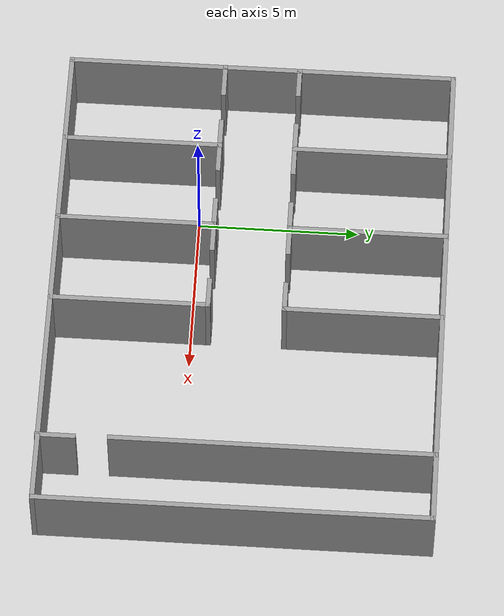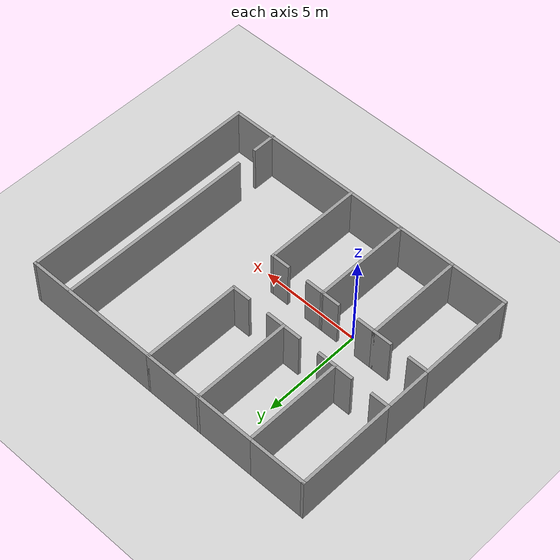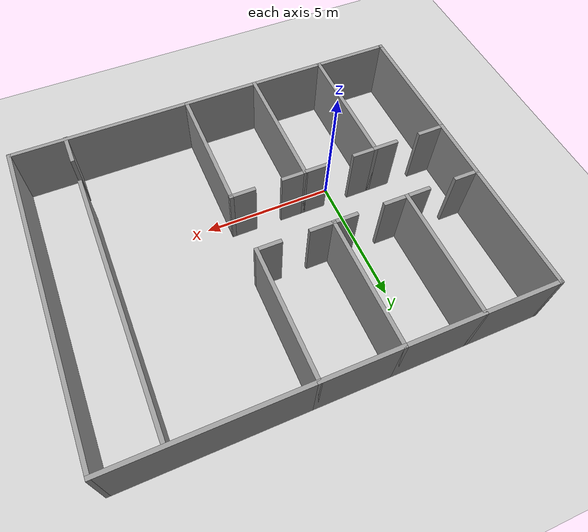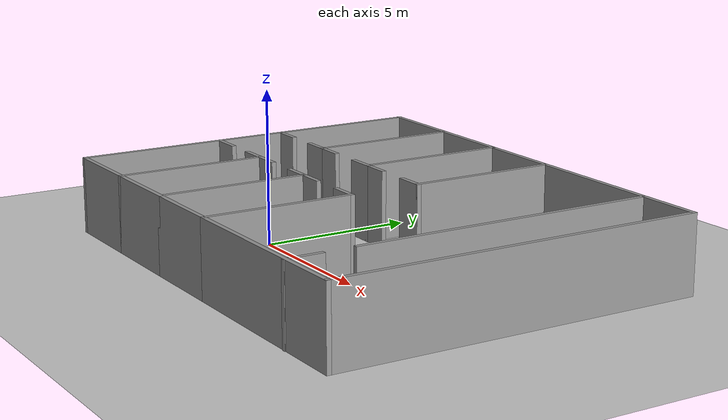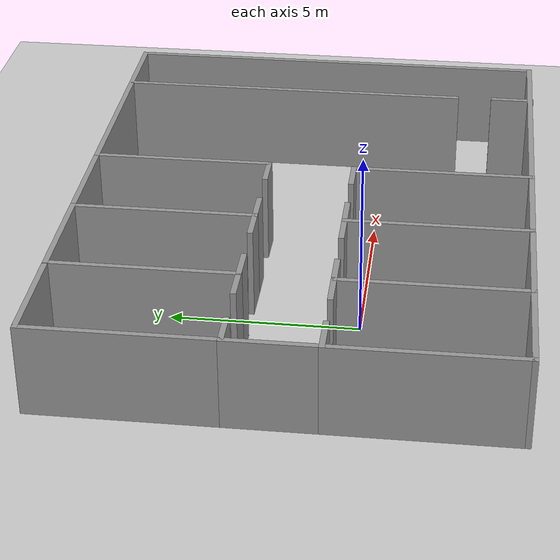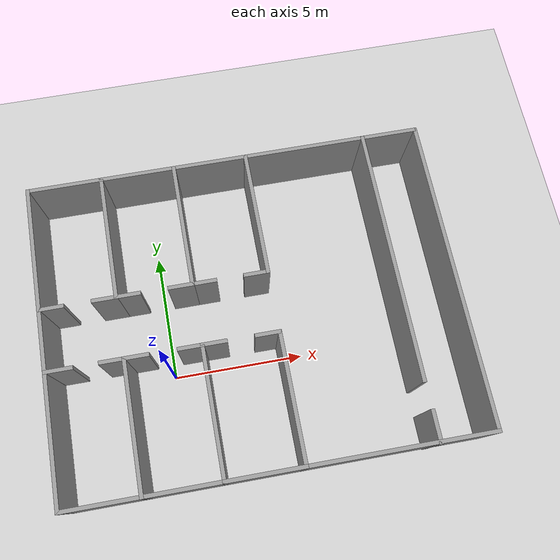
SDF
<sdf version='1.4'>
  <world name='default'>
    <!-- A global light source -->
    <include>
      <uri>model://sun</uri>
    </include>

    <!-- A ground plane -->
    <include>
      <uri>model://ground_plane</uri>
    </include>

    <physics type="ode">
      <real_time_update_rate>1000.0</real_time_update_rate>
      <max_step_size>0.001</max_step_size>
      <real_time_factor>1</real_time_factor>
      <ode>
        <solver>
          <type>quick</type>
          <iters>150</iters>
          <precon_iters>0</precon_iters>
          <sor>1.400000</sor>
          <use_dynamic_moi_rescaling>1</use_dynamic_moi_rescaling>
        </solver>
        <constraints>
          <cfm>0.00001</cfm>
          <erp>0.2</erp>
          <contact_max_correcting_vel>2000.000000</contact_max_correcting_vel>
          <contact_surface_layer>0.01000</contact_surface_layer>
        </constraints>
      </ode>
    </physics>

    <!-- A turtlebot symbol -->
    <include>
      <uri>model://turtlebot3_hospital</uri>
    </include>

    <scene>
      <ambient>0.4 0.4 0.4 1</ambient>
      <background>0.7 0.7 0.7 1</background>
      <shadows>true</shadows>
    </scene>

    <gui fullscreen='0'>
      <camera name='user_camera'>
        <pose>0.0 0.0 17.0 0 1.5708 0</pose>
        <view_controller>orbit</view_controller>
      </camera>
    </gui>
  </world>
</sdf>

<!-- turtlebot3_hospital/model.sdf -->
<sdf version='1.7'>
  <model name='turtlebot3_hotel'>
    <pose>3.3 1.71306 0 0 -0 0</pose>
    <link name='Wall_0'>
      <collision name='Wall_0_Collision'>
        <geometry>
          <box>
            <size>3 0.15 2.5</size>
          </box>
        </geometry>
        <pose>0 0 1.25 0 -0 0</pose>
      </collision>
      <visual name='Wall_0_Visual'>
        <pose>0 0 1.25 0 -0 0</pose>
        <geometry>
          <box>
            <size>3 0.15 2.5</size>
          </box>
        </geometry>
        <material>
          <script>
            <uri>file://media/materials/scripts/gazebo.material</uri>
            <name>Gazebo/Grey</name>
          </script>
          <ambient>1 1 1 1</ambient>
        </material>
        <meta>
          <layer>0</layer>
        </meta>
      </visual>
      <pose>-6.275 -6.01306 0 0 -0 0</pose>
    </link>
    <link name='Wall_10'>
      <collision name='Wall_10_Collision'>
        <geometry>
          <box>
            <size>5 0.15 2.5</size>
          </box>
        </geometry>
        <pose>0 0 1.25 0 -0 0</pose>
      </collision>
      <visual name='Wall_10_Visual'>
        <pose>0 0 1.25 0 -0 0</pose>
        <geometry>
          <box>
            <size>5 0.15 2.5</size>
          </box>
        </geometry>
        <material>
          <script>
            <uri>file://media/materials/scripts/gazebo.material</uri>
            <name>Gazebo/Grey</name>
          </script>
          <ambient>1 1 1 1</ambient>
        </material>
        <meta>
          <layer>0</layer>
        </meta>
      </visual>
      <pose>-2 -3.58806 0 0 -0 1.5708</pose>
    </link>
    <link name='Wall_11'>
      <collision name='Wall_11_Collision'>
        <geometry>
          <box>
            <size>1 0.15 2.5</size>
          </box>
        </geometry>
        <pose>0 0 1.25 0 -0 0</pose>
      </collision>
      <visual name='Wall_11_Visual'>
        <pose>0 0 1.25 0 -0 0</pose>
        <geometry>
          <box>
            <size>1 0.15 2.5</size>
          </box>
        </geometry>
        <material>
          <script>
            <uri>file://media/materials/scripts/gazebo.material</uri>
            <name>Gazebo/Grey</name>
          </script>
          <ambient>1 1 1 1</ambient>
        </material>
        <meta>
          <layer>0</layer>
        </meta>
      </visual>
      <pose>-2.425 -1.16306 0 0 -0 3.14159</pose>
    </link>
    <link name='Wall_16'>
      <collision name='Wall_16_Collision'>
        <geometry>
          <box>
            <size>5 0.15 2.5</size>
          </box>
        </geometry>
        <pose>0 0 1.25 0 -0 0</pose>
      </collision>
      <visual name='Wall_16_Visual'>
        <pose>0 0 1.25 0 -0 0</pose>
        <geometry>
          <box>
            <size>5 0.15 2.5</size>
          </box>
        </geometry>
        <material>
          <script>
            <uri>file://media/materials/scripts/gazebo.material</uri>
            <name>Gazebo/Grey</name>
          </script>
          <ambient>1 1 1 1</ambient>
        </material>
        <meta>
          <layer>0</layer>
        </meta>
      </visual>
      <pose>-4.85 -3.58806 0 0 -0 1.5708</pose>
    </link>
    <link name='Wall_17'>
      <collision name='Wall_17_Collision'>
        <geometry>
          <box>
            <size>1 0.15 2.5</size>
          </box>
        </geometry>
        <pose>0 0 1.25 0 -0 0</pose>
      </collision>
      <visual name='Wall_17_Visual'>
        <pose>0 0 1.25 0 -0 0</pose>
        <geometry>
          <box>
            <size>1 0.15 2.5</size>
          </box>
        </geometry>
        <material>
          <script>
            <uri>file://media/materials/scripts/gazebo.material</uri>
            <name>Gazebo/Grey</name>
          </script>
          <ambient>1 1 1 1</ambient>
        </material>
        <meta>
          <layer>0</layer>
        </meta>
      </visual>
      <pose>-5.275 -1.16306 0 0 -0 3.14159</pose>
    </link>
    <link name='Wall_19'>
      <collision name='Wall_19_Collision'>
        <geometry>
          <box>
            <size>3 0.15 2.5</size>
          </box>
        </geometry>
        <pose>0 0 1.25 0 -0 0</pose>
      </collision>
      <visual name='Wall_19_Visual'>
        <pose>0 0 1.25 0 -0 0</pose>
        <geometry>
          <box>
            <size>3 0.15 2.5</size>
          </box>
        </geometry>
        <material>
          <script>
            <uri>file://media/materials/scripts/gazebo.material</uri>
            <name>Gazebo/Grey</name>
          </script>
          <ambient>1 1 1 1</ambient>
        </material>
        <meta>
          <layer>0</layer>
        </meta>
      </visual>
      <pose>-3.425 -6.01306 0 0 -0 0</pose>
    </link>
    <link name='Wall_2'>
      <collision name='Wall_2_Collision'>
        <geometry>
          <box>
            <size>5 0.15 2.5</size>
          </box>
        </geometry>
        <pose>0 0 1.25 0 -0 0</pose>
      </collision>
      <visual name='Wall_2_Visual'>
        <pose>0 0 1.25 0 -0 0</pose>
        <geometry>
          <box>
            <size>5 0.15 2.5</size>
          </box>
        </geometry>
        <material>
          <script>
            <uri>file://media/materials/scripts/gazebo.material</uri>
            <name>Gazebo/Grey</name>
          </script>
          <ambient>1 1 1 1</ambient>
        </material>
        <meta>
          <layer>0</layer>
        </meta>
      </visual>
      <pose>-7.7 -3.58806 0 0 -0 1.5708</pose>
    </link>
    <link name='Wall_21'>
      <collision name='Wall_21_Collision'>
        <geometry>
          <box>
            <size>1 0.15 2.5</size>
          </box>
        </geometry>
        <pose>0 0 1.25 0 -0 0</pose>
      </collision>
      <visual name='Wall_21_Visual'>
        <pose>0 0 1.25 0 -0 0</pose>
        <geometry>
          <box>
            <size>1 0.15 2.5</size>
          </box>
        </geometry>
        <material>
          <script>
            <uri>file://media/materials/scripts/gazebo.material</uri>
            <name>Gazebo/Grey</name>
          </script>
          <ambient>1 1 1 1</ambient>
        </material>
        <meta>
          <layer>0</layer>
        </meta>
      </visual>
      <pose>-4.425 -1.16306 0 0 -0 0</pose>
    </link>
    <link name='Wall_24'>
      <collision name='Wall_24_Collision'>
        <geometry>
          <box>
            <size>3 0.15 2.5</size>
          </box>
        </geometry>
        <pose>0 0 1.25 0 -0 0</pose>
      </collision>
      <visual name='Wall_24_Visual'>
        <pose>0 0 1.25 0 -0 0</pose>
        <geometry>
          <box>
            <size>3 0.15 2.5</size>
          </box>
        </geometry>
        <material>
          <script>
            <uri>file://media/materials/scripts/gazebo.material</uri>
            <name>Gazebo/Grey</name>
          </script>
          <ambient>1 1 1 1</ambient>
        </material>
        <meta>
          <layer>0</layer>
        </meta>
      </visual>
      <pose>-0.575 -6.01306 0 0 -0 0</pose>
    </link>
    <link name='Wall_25'>
      <collision name='Wall_25_Collision'>
        <geometry>
          <box>
            <size>5 0.15 2.5</size>
          </box>
        </geometry>
        <pose>0 0 1.25 0 -0 0</pose>
      </collision>
      <visual name='Wall_25_Visual'>
        <pose>0 0 1.25 0 -0 0</pose>
        <geometry>
          <box>
            <size>5 0.15 2.5</size>
          </box>
        </geometry>
        <material>
          <script>
            <uri>file://media/materials/scripts/gazebo.material</uri>
            <name>Gazebo/Grey</name>
          </script>
          <ambient>1 1 1 1</ambient>
        </material>
        <meta>
          <layer>0</layer>
        </meta>
      </visual>
      <pose>0.85 -3.58806 0 0 -0 1.5708</pose>
    </link>
    <link name='Wall_26'>
      <collision name='Wall_26_Collision'>
        <geometry>
          <box>
            <size>1 0.15 2.5</size>
          </box>
        </geometry>
        <pose>0 0 1.25 0 -0 0</pose>
      </collision>
      <visual name='Wall_26_Visual'>
        <pose>0 0 1.25 0 -0 0</pose>
        <geometry>
          <box>
            <size>1 0.15 2.5</size>
          </box>
        </geometry>
        <material>
          <script>
            <uri>file://media/materials/scripts/gazebo.material</uri>
            <name>Gazebo/Grey</name>
          </script>
          <ambient>1 1 1 1</ambient>
        </material>
        <meta>
          <layer>0</layer>
        </meta>
      </visual>
      <pose>0.425 -1.16306 0 0 -0 3.14159</pose>
    </link>
    <link name='Wall_28'>
      <collision name='Wall_28_Collision'>
        <geometry>
          <box>
            <size>1 0.15 2.5</size>
          </box>
        </geometry>
        <pose>0 0 1.25 0 -0 0</pose>
      </collision>
      <visual name='Wall_28_Visual'>
        <pose>0 0 1.25 0 -0 0</pose>
        <geometry>
          <box>
            <size>1 0.15 2.5</size>
          </box>
        </geometry>
        <material>
          <script>
            <uri>file://media/materials/scripts/gazebo.material</uri>
            <name>Gazebo/Grey</name>
          </script>
          <ambient>1 1 1 1</ambient>
        </material>
        <meta>
          <layer>0</layer>
        </meta>
      </visual>
      <pose>-1.575 -1.16306 0 0 -0 0</pose>
    </link>
    <link name='Wall_3'>
      <collision name='Wall_3_Collision'>
        <geometry>
          <box>
            <size>1.1 0.15 2.5</size>
          </box>
        </geometry>
        <pose>0 0 1.25 0 -0 0</pose>
      </collision>
      <visual name='Wall_3_Visual'>
        <pose>0 0 1.25 0 -0 0</pose>
        <geometry>
          <box>
            <size>1.1 0.15 2.5</size>
          </box>
        </geometry>
        <material>
          <script>
            <uri>file://media/materials/scripts/gazebo.material</uri>
            <name>Gazebo/Grey</name>
          </script>
          <ambient>1 1 1 1</ambient>
        </material>
        <meta>
          <layer>0</layer>
        </meta>
      </visual>
      <pose>-7.225 -1.16306 0 0 -0 0</pose>
    </link>
    <link name='Wall_30'>
      <collision name='Wall_30_Collision'>
        <geometry>
          <box>
            <size>2.5 0.15 2.5</size>
          </box>
        </geometry>
        <pose>0 0 1.25 0 -0 0</pose>
      </collision>
      <visual name='Wall_30_Visual'>
        <pose>0 0 1.25 0 -0 0</pose>
        <geometry>
          <box>
            <size>2.5 0.15 2.5</size>
          </box>
        </geometry>
        <material>
          <script>
            <uri>file://media/materials/scripts/gazebo.material</uri>
            <name>Gazebo/Grey</name>
          </script>
          <ambient>1 1 1 1</ambient>
        </material>
        <meta>
          <layer>0</layer>
        </meta>
      </visual>
      <pose>-7.7 0.011938 0 0 -0 1.5708</pose>
    </link>
    <link name='Wall_31'>
      <collision name='Wall_31_Collision'>
        <geometry>
          <box>
            <size>1 0.15 2.5</size>
          </box>
        </geometry>
        <pose>0 0 1.25 0 -0 0</pose>
      </collision>
      <visual name='Wall_31_Visual'>
        <pose>0 0 1.25 0 -0 0</pose>
        <geometry>
          <box>
            <size>1 0.15 2.5</size>
          </box>
        </geometry>
        <material>
          <script>
            <uri>file://media/materials/scripts/gazebo.material</uri>
            <name>Gazebo/Grey</name>
          </script>
          <ambient>1 1 1 1</ambient>
        </material>
        <meta>
          <layer>0</layer>
        </meta>
      </visual>
      <pose>-7.275 1.18694 0 0 -0 0</pose>
    </link>
    <link name='Wall_34'>
      <collision name='Wall_34_Collision'>
        <geometry>
          <box>
            <size>5 0.15 2.5</size>
          </box>
        </geometry>
        <pose>0 0 1.25 0 -0 0</pose>
      </collision>
      <visual name='Wall_34_Visual'>
        <pose>0 0 1.25 0 -0 0</pose>
        <geometry>
          <box>
            <size>5 0.15 2.5</size>
          </box>
        </geometry>
        <material>
          <script>
            <uri>file://media/materials/scripts/gazebo.material</uri>
            <name>Gazebo/Grey</name>
          </script>
          <ambient>1 1 1 1</ambient>
        </material>
        <meta>
          <layer>0</layer>
        </meta>
      </visual>
      <pose>-7.7 3.61194 0 0 -0 1.5708</pose>
    </link>
    <link name='Wall_35'>
      <collision name='Wall_35_Collision'>
        <geometry>
          <box>
            <size>3 0.15 2.5</size>
          </box>
        </geometry>
        <pose>0 0 1.25 0 -0 0</pose>
      </collision>
      <visual name='Wall_35_Visual'>
        <pose>0 0 1.25 0 -0 0</pose>
        <geometry>
          <box>
            <size>3 0.15 2.5</size>
          </box>
        </geometry>
        <material>
          <script>
            <uri>file://media/materials/scripts/gazebo.material</uri>
            <name>Gazebo/Grey</name>
          </script>
          <ambient>1 1 1 1</ambient>
        </material>
        <meta>
          <layer>0</layer>
        </meta>
      </visual>
      <pose>-6.275 6.03694 0 0 -0 0</pose>
    </link>
    <link name='Wall_36'>
      <collision name='Wall_36_Collision'>
        <geometry>
          <box>
            <size>5 0.15 2.5</size>
          </box>
        </geometry>
        <pose>0 0 1.25 0 -0 0</pose>
      </collision>
      <visual name='Wall_36_Visual'>
        <pose>0 0 1.25 0 -0 0</pose>
        <geometry>
          <box>
            <size>5 0.15 2.5</size>
          </box>
        </geometry>
        <material>
          <script>
            <uri>file://media/materials/scripts/gazebo.material</uri>
            <name>Gazebo/Grey</name>
          </script>
          <ambient>1 1 1 1</ambient>
        </material>
        <meta>
          <layer>0</layer>
        </meta>
      </visual>
      <pose>-4.85 3.61194 0 0 -0 -1.5708</pose>
    </link>
    <link name='Wall_37'>
      <collision name='Wall_37_Collision'>
        <geometry>
          <box>
            <size>1 0.15 2.5</size>
          </box>
        </geometry>
        <pose>0 0 1.25 0 -0 0</pose>
      </collision>
      <visual name='Wall_37_Visual'>
        <pose>0 0 1.25 0 -0 0</pose>
        <geometry>
          <box>
            <size>1 0.15 2.5</size>
          </box>
        </geometry>
        <material>
          <script>
            <uri>file://media/materials/scripts/gazebo.material</uri>
            <name>Gazebo/Grey</name>
          </script>
          <ambient>1 1 1 1</ambient>
        </material>
        <meta>
          <layer>0</layer>
        </meta>
      </visual>
      <pose>-5.275 1.18694 0 0 -0 3.14159</pose>
    </link>
    <link name='Wall_39'>
      <collision name='Wall_39_Collision'>
        <geometry>
          <box>
            <size>1 0.15 2.5</size>
          </box>
        </geometry>
        <pose>0 0 1.25 0 -0 0</pose>
      </collision>
      <visual name='Wall_39_Visual'>
        <pose>0 0 1.25 0 -0 0</pose>
        <geometry>
          <box>
            <size>1 0.15 2.5</size>
          </box>
        </geometry>
        <material>
          <script>
            <uri>file://media/materials/scripts/gazebo.material</uri>
            <name>Gazebo/Grey</name>
          </script>
          <ambient>1 1 1 1</ambient>
        </material>
        <meta>
          <layer>0</layer>
        </meta>
      </visual>
      <pose>-4.425 1.18694 0 0 -0 0</pose>
    </link>
    <link name='Wall_41'>
      <collision name='Wall_41_Collision'>
        <geometry>
          <box>
            <size>3 0.15 2.5</size>
          </box>
        </geometry>
        <pose>0 0 1.25 0 -0 0</pose>
      </collision>
      <visual name='Wall_41_Visual'>
        <pose>0 0 1.25 0 -0 0</pose>
        <geometry>
          <box>
            <size>3 0.15 2.5</size>
          </box>
        </geometry>
        <material>
          <script>
            <uri>file://media/materials/scripts/gazebo.material</uri>
            <name>Gazebo/Grey</name>
          </script>
          <ambient>1 1 1 1</ambient>
        </material>
        <meta>
          <layer>0</layer>
        </meta>
      </visual>
      <pose>-3.425 6.03694 0 0 -0 0</pose>
    </link>
    <link name='Wall_42'>
      <collision name='Wall_42_Collision'>
        <geometry>
          <box>
            <size>5 0.15 2.5</size>
          </box>
        </geometry>
        <pose>0 0 1.25 0 -0 0</pose>
      </collision>
      <visual name='Wall_42_Visual'>
        <pose>0 0 1.25 0 -0 0</pose>
        <geometry>
          <box>
            <size>5 0.15 2.5</size>
          </box>
        </geometry>
        <material>
          <script>
            <uri>file://media/materials/scripts/gazebo.material</uri>
            <name>Gazebo/Grey</name>
          </script>
          <ambient>1 1 1 1</ambient>
        </material>
        <meta>
          <layer>0</layer>
        </meta>
      </visual>
      <pose>-2 3.61194 0 0 -0 -1.5708</pose>
    </link>
    <link name='Wall_43'>
      <collision name='Wall_43_Collision'>
        <geometry>
          <box>
            <size>1 0.15 2.5</size>
          </box>
        </geometry>
        <pose>0 0 1.25 0 -0 0</pose>
      </collision>
      <visual name='Wall_43_Visual'>
        <pose>0 0 1.25 0 -0 0</pose>
        <geometry>
          <box>
            <size>1 0.15 2.5</size>
          </box>
        </geometry>
        <material>
          <script>
            <uri>file://media/materials/scripts/gazebo.material</uri>
            <name>Gazebo/Grey</name>
          </script>
          <ambient>1 1 1 1</ambient>
        </material>
        <meta>
          <layer>0</layer>
        </meta>
      </visual>
      <pose>-2.425 1.18694 0 0 -0 3.14159</pose>
    </link>
    <link name='Wall_45'>
      <collision name='Wall_45_Collision'>
        <geometry>
          <box>
            <size>3 0.15 2.5</size>
          </box>
        </geometry>
        <pose>0 0 1.25 0 -0 0</pose>
      </collision>
      <visual name='Wall_45_Visual'>
        <pose>0 0 1.25 0 -0 0</pose>
        <geometry>
          <box>
            <size>3 0.15 2.5</size>
          </box>
        </geometry>
        <material>
          <script>
            <uri>file://media/materials/scripts/gazebo.material</uri>
            <name>Gazebo/Grey</name>
          </script>
          <ambient>1 1 1 1</ambient>
        </material>
        <meta>
          <layer>0</layer>
        </meta>
      </visual>
      <pose>-0.575 6.03694 0 0 -0 0</pose>
    </link>
    <link name='Wall_46'>
      <collision name='Wall_46_Collision'>
        <geometry>
          <box>
            <size>5 0.15 2.5</size>
          </box>
        </geometry>
        <pose>0 0 1.25 0 -0 0</pose>
      </collision>
      <visual name='Wall_46_Visual'>
        <pose>0 0 1.25 0 -0 0</pose>
        <geometry>
          <box>
            <size>5 0.15 2.5</size>
          </box>
        </geometry>
        <material>
          <script>
            <uri>file://media/materials/scripts/gazebo.material</uri>
            <name>Gazebo/Grey</name>
          </script>
          <ambient>1 1 1 1</ambient>
        </material>
        <meta>
          <layer>0</layer>
        </meta>
      </visual>
      <pose>0.85 3.61194 0 0 -0 -1.5708</pose>
    </link>
    <link name='Wall_47'>
      <collision name='Wall_47_Collision'>
        <geometry>
          <box>
            <size>1 0.15 2.5</size>
          </box>
        </geometry>
        <pose>0 0 1.25 0 -0 0</pose>
      </collision>
      <visual name='Wall_47_Visual'>
        <pose>0 0 1.25 0 -0 0</pose>
        <geometry>
          <box>
            <size>1 0.15 2.5</size>
          </box>
        </geometry>
        <material>
          <script>
            <uri>file://media/materials/scripts/gazebo.material</uri>
            <name>Gazebo/Grey</name>
          </script>
          <ambient>1 1 1 1</ambient>
        </material>
        <meta>
          <layer>0</layer>
        </meta>
      </visual>
      <pose>0.425 1.18694 0 0 -0 3.14159</pose>
    </link>
    <link name='Wall_49'>
      <collision name='Wall_49_Collision'>
        <geometry>
          <box>
            <size>1 0.15 2.5</size>
          </box>
        </geometry>
        <pose>0 0 1.25 0 -0 0</pose>
      </collision>
      <visual name='Wall_49_Visual'>
        <pose>0 0 1.25 0 -0 0</pose>
        <geometry>
          <box>
            <size>1 0.15 2.5</size>
          </box>
        </geometry>
        <material>
          <script>
            <uri>file://media/materials/scripts/gazebo.material</uri>
            <name>Gazebo/Grey</name>
          </script>
          <ambient>1 1 1 1</ambient>
        </material>
        <meta>
          <layer>0</layer>
        </meta>
      </visual>
      <pose>-1.575 1.18694 0 0 -0 0</pose>
    </link>
    <link name='Wall_51'>
      <collision name='Wall_51_Collision'>
        <geometry>
          <box>
            <size>7 0.15 2.5</size>
          </box>
        </geometry>
        <pose>0 0 1.25 0 -0 0</pose>
      </collision>
      <visual name='Wall_51_Visual'>
        <pose>0 0 1.25 0 -0 0</pose>
        <geometry>
          <box>
            <size>7 0.15 2.5</size>
          </box>
        </geometry>
        <material>
          <script>
            <uri>file://media/materials/scripts/gazebo.material</uri>
            <name>Gazebo/Grey</name>
          </script>
          <ambient>1 1 1 1</ambient>
        </material>
        <meta>
          <layer>0</layer>
        </meta>
      </visual>
      <pose>4.275 6.03694 0 0 -0 0</pose>
    </link>
    <link name='Wall_52'>
      <collision name='Wall_52_Collision'>
        <geometry>
          <box>
            <size>12.1892 0.15 2.5</size>
          </box>
        </geometry>
        <pose>0 0 1.25 0 -0 0</pose>
      </collision>
      <visual name='Wall_52_Visual'>
        <pose>0 0 1.25 0 -0 0</pose>
        <geometry>
          <box>
            <size>12.1892 0.15 2.5</size>
          </box>
        </geometry>
        <material>
          <script>
            <uri>file://media/materials/scripts/gazebo.material</uri>
            <name>Gazebo/Grey</name>
          </script>
          <ambient>1 1 1 1</ambient>
        </material>
        <meta>
          <layer>0</layer>
        </meta>
      </visual>
      <pose>7.7 0.017356 0 0 -0 -1.5708</pose>
    </link>
    <link name='Wall_54'>
      <collision name='Wall_54_Collision'>
        <geometry>
          <box>
            <size>7 0.15 2.5</size>
          </box>
        </geometry>
        <pose>0 0 1.25 0 -0 0</pose>
      </collision>
      <visual name='Wall_54_Visual'>
        <pose>0 0 1.25 0 -0 0</pose>
        <geometry>
          <box>
            <size>7 0.15 2.5</size>
          </box>
        </geometry>
        <material>
          <script>
            <uri>file://media/materials/scripts/gazebo.material</uri>
            <name>Gazebo/Grey</name>
          </script>
          <ambient>1 1 1 1</ambient>
        </material>
        <meta>
          <layer>0</layer>
        </meta>
      </visual>
      <pose>4.275 -6.01306 0 0 -0 0</pose>
    </link>
    <link name='Wall_58'>
      <collision name='Wall_58_Collision'>
        <geometry>
          <box>
            <size>10 0.15 2.5</size>
          </box>
        </geometry>
        <pose>0 0 1.25 0 -0 0</pose>
      </collision>
      <visual name='Wall_58_Visual'>
        <pose>0 0 1.25 0 -0 0</pose>
        <geometry>
          <box>
            <size>10 0.15 2.5</size>
          </box>
        </geometry>
        <material>
          <script>
            <uri>file://media/materials/scripts/gazebo.material</uri>
            <name>Gazebo/Grey</name>
          </script>
          <ambient>1 1 1 1</ambient>
        </material>
        <meta>
          <layer>0</layer>
        </meta>
      </visual>
      <pose>5.56835 1.0986 0 0 -0 -1.5708</pose>
    </link>
    <link name='Wall_63'>
      <collision name='Wall_63_Collision'>
        <geometry>
          <box>
            <size>1.25 0.15 2.5</size>
          </box>
        </geometry>
        <pose>0 0 1.25 0 -0 0</pose>
      </collision>
      <visual name='Wall_63_Visual'>
        <pose>0 0 1.25 0 -0 0</pose>
        <geometry>
          <box>
            <size>1.25 0.15 2.5</size>
          </box>
        </geometry>
        <material>
          <script>
            <uri>file://media/materials/scripts/gazebo.material</uri>
            <name>Gazebo/Grey</name>
          </script>
          <ambient>1 1 1 1</ambient>
        </material>
        <meta>
          <layer>0</layer>
        </meta>
      </visual>
      <pose>5.59877 -5.48694 0 0 -0 1.5708</pose>
    </link>
    <static>1</static>
  </model>
</sdf>
